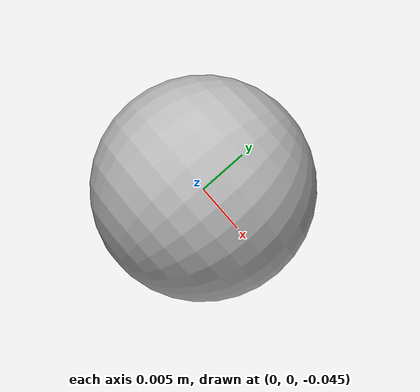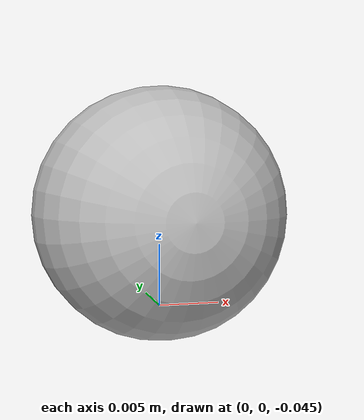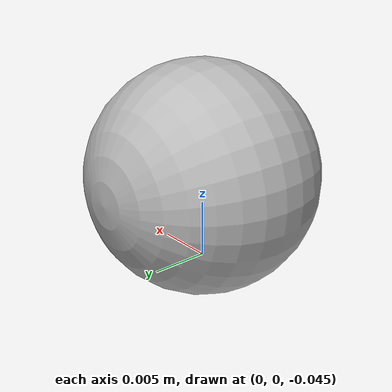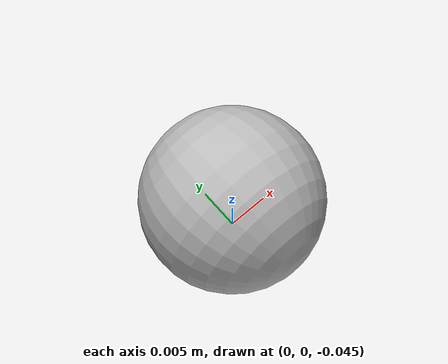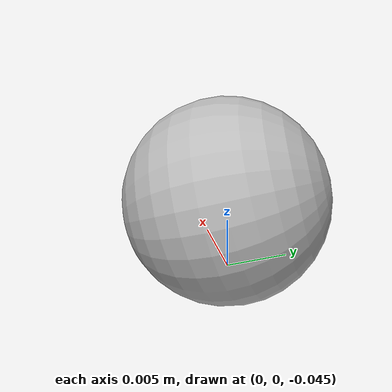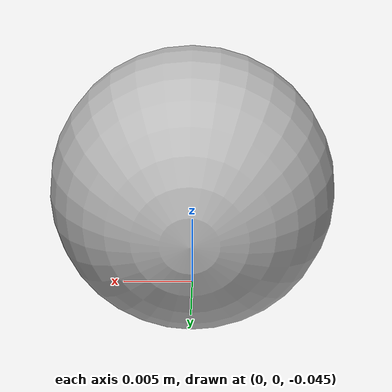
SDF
<?xml version="1.0"?>
<sdf version="1.6">
  <model name="baseball">
    <link name="baseball_link">
      <visual name="ball_visual">
      <pose>0 0 -0.0375 0 0 0</pose>
        <geometry>
          <mesh>
            <uri>baseball.obj</uri>
            <scale>0.01 0.01 0.01</scale>
          </mesh>
        </geometry>
      </visual>
      <collision name="ball_collision">
        <geometry>
          <sphere><radius>0.01</radius></sphere>
        </geometry>
        <drake:proximity_properties>
          <drake:rigid_hydroelastic/>
          <drake:mesh_resolution_hint>0.001</drake:mesh_resolution_hint>
          <drake:hunt_crossley_dissipation>0.1</drake:hunt_crossley_dissipation>
          <drake:point_contact_stiffness>1e11</drake:point_contact_stiffness>
          <drake:hydroelastic_modulus>1e11</drake:hydroelastic_modulus>
        </drake:proximity_properties>
        <surface>
          <friction>
            <ode>
              <mu>0.23</mu>
              <mu2>0.13</mu2>
            </ode>
          </friction>
        </surface>
      </collision>
      <inertial>
        <pose>0.0 0.0 0.0 0 0 0</pose>
        <mass>0.145</mass>
        <inertia>
          <!-- Approximate inertia for a solid sphere: (2/5) m r^2 -->
          <ixx>8e-5</ixx>
          <iyy>8e-5</iyy>
          <izz>8e-5</izz>
          <ixy>0</ixy>
          <ixz>0</ixz>
          <iyz>0</iyz>
        </inertia>
      </inertial>
    </link>
  </model>
</sdf>
